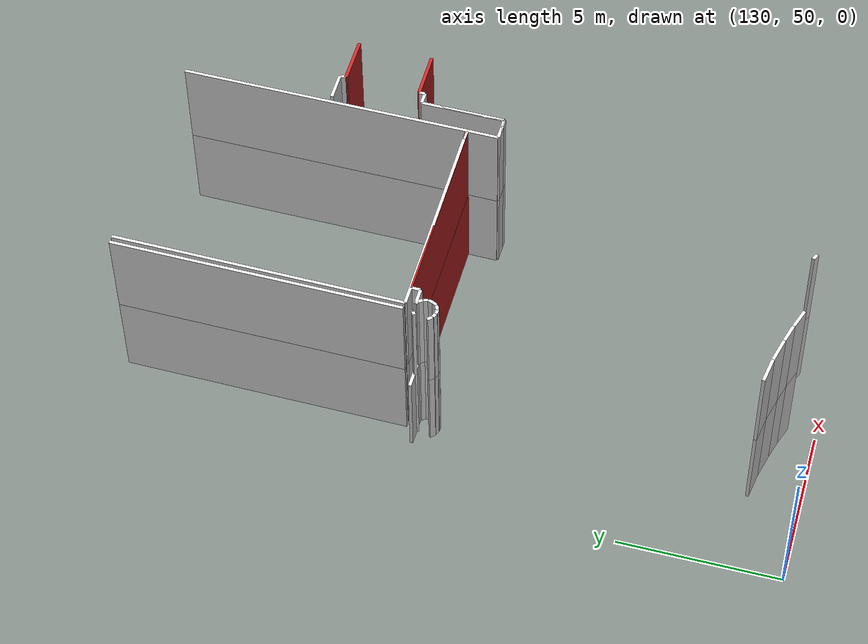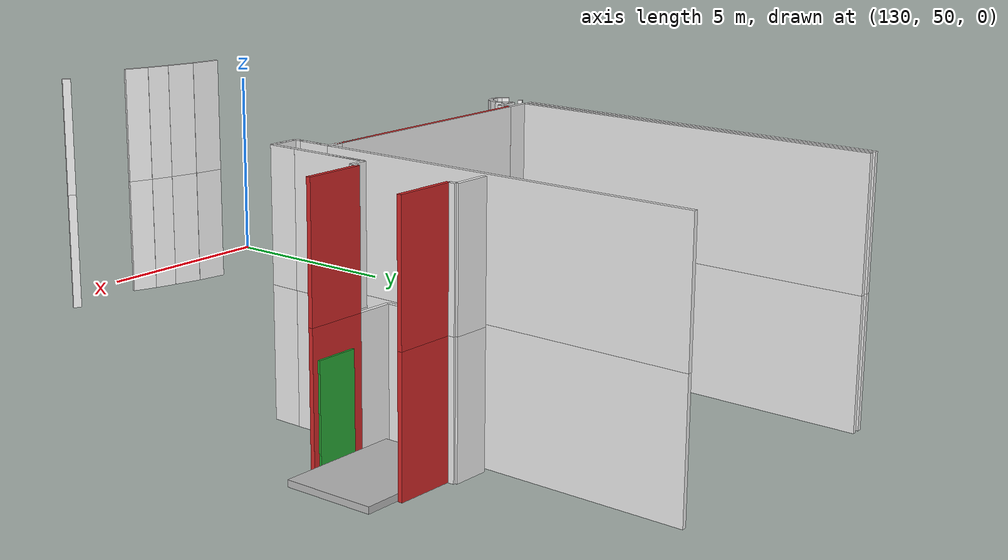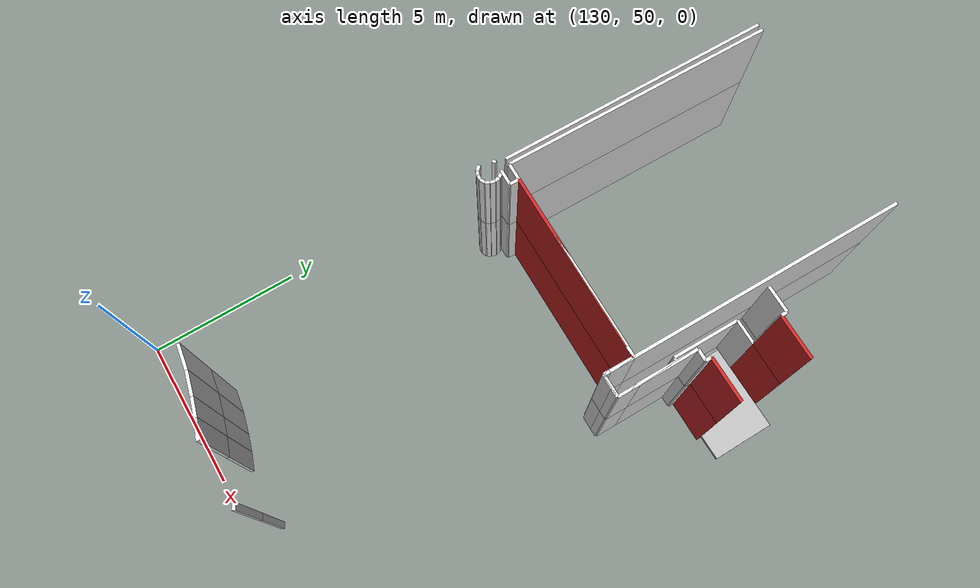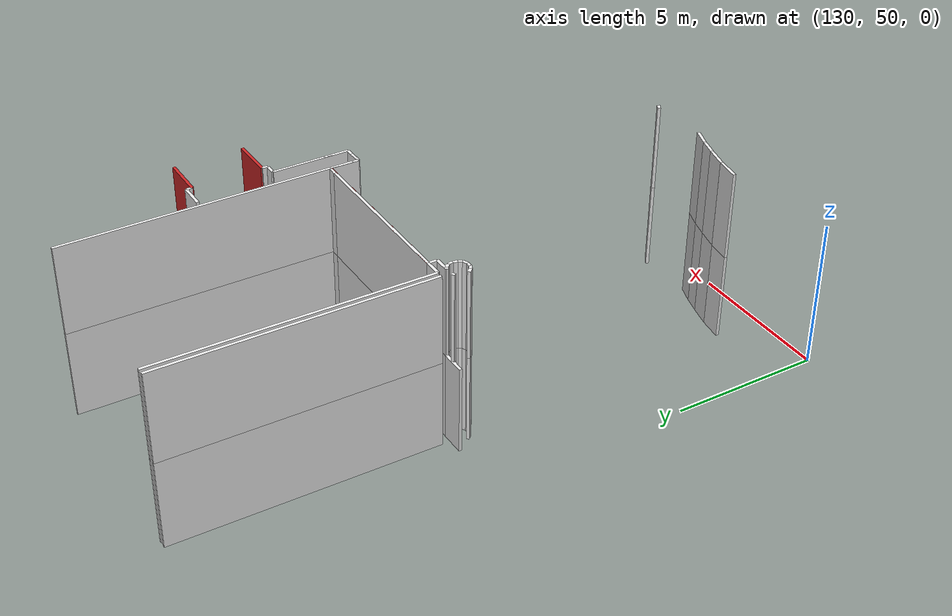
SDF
<sdf version="1.6">
 <world name="default">
  <model name="elevator">
   <pose>141.07 64.850 0.080 0 0 -1.5708</pose>
   <link name="link">
    <inertial><mass>800</mass></inertial>
    <collision name="floor_collision"><geometry><box><size>2.10 2.91 0.15</size></box></geometry></collision>
    <visual name="floor_visual"><geometry><box><size>2.10 2.91 0.15</size></box></geometry></visual>
   </link>
   <link name="door">
    <pose>1.0745 0 1.125 0 0 0</pose>
    <collision name="collision"><geometry><box><size>0.05 1.0 2.25</size></box></geometry></collision>
    <visual name="visual">
     <geometry><box><size>0.05 1.0 2.25</size></box></geometry>
     <material><script><name>Gazebo/Green</name></script></material>
    </visual>
   </link>
   <joint name="door_joint" type="prismatic">
    <parent>link</parent>
    <child>door</child>
    <axis>
     <xyz>0 1 0</xyz>
     <limit><lower>0</lower><upper>1</upper><effort>30</effort></limit>
     <dynamics><damping>2</damping></dynamics>
    </axis>
   </joint>
   <joint name="lift_joint" type="prismatic">
    <parent>world</parent>
    <child>link</child>
    <axis>
     <xyz>0 0 1</xyz>
     <limit><lower>0</lower><upper>10</upper><effort>300000</effort></limit>
     <dynamics><damping>5</damping></dynamics>
    </axis>
    <physics><ode><implicit_spring_damper>1</implicit_spring_damper></ode></physics>
   </joint>
   <plugin filename="libgazebo_ros_elevator.so" name="elevator_plugin">
    <lift_joint>elevator::lift_joint</lift_joint>
    <door_joint>elevator::door_joint</door_joint>
    <floor_height>3.075</floor_height>
    <door_wait_time>10</door_wait_time>
    <topic>/elevator</topic>
   </plugin>
  </model>
  <model name="wall_141.0_66.0_1.5">
   <static>true</static>
   <pose>141.0100000000093 65.9800000002142 1.5 0 0 -0.01428474260046099</pose>
   <link name="link">
    <visual name="visual">
     <geometry><box><size>1.4001428498785178 0.1 3</size></box></geometry>
     <material>
      <script><uri>file://media/materials/scripts/gazebo.material</uri><name>Gazebo/Red</name></script>
     </material>
    </visual>
    <collision name="collision"><geometry><box><size>1.4001428498785178 0.1 3</size></box></geometry></collision>
   </link>
  </model>
  <model name="wall_141.0_63.7_1.5">
   <static>true</static>
   <pose>140.9899999999907 63.68500000005588 1.5 0 0 -0.007142735509647464</pose>
   <link name="link">
    <visual name="visual">
     <geometry><box><size>1.4000357138518724 0.1 3</size></box></geometry>
     <material>
      <script><uri>file://media/materials/scripts/gazebo.material</uri><name>Gazebo/Red</name></script>
     </material>
    </visual>
    <collision name="collision"><geometry><box><size>1.4000357138518724 0.1 3</size></box></geometry></collision>
   </link>
  </model>
  <model name="wall_136.2_62.0_1.5">
   <static>true</static>
   <pose>136.19500000000698 61.950000000186265 1.5 0 0 -0.013266220046968015</pose>
   <link name="link">
    <visual name="visual">
     <geometry><box><size>6.030530656612972 0.1 3</size></box></geometry>
     <material>
      <script><uri>file://media/materials/scripts/gazebo.material</uri><name>Gazebo/Red</name></script>
     </material>
    </visual>
    <collision name="collision"><geometry><box><size>6.030530656612972 0.1 3</size></box></geometry></collision>
   </link>
  </model>
  <model name="wall_141.0_66.0_4.5">
   <static>true</static>
   <pose>141.0100000000093 65.9800000002142 4.5 0 0 -0.01428474260046099</pose>
   <link name="link">
    <visual name="visual">
     <geometry><box><size>1.4001428498785178 0.1 3</size></box></geometry>
     <material>
      <script><uri>file://media/materials/scripts/gazebo.material</uri><name>Gazebo/Red</name></script>
     </material>
    </visual>
    <collision name="collision"><geometry><box><size>1.4001428498785178 0.1 3</size></box></geometry></collision>
   </link>
  </model>
  <model name="wall_136.2_62.0_4.5">
   <static>true</static>
   <pose>136.19500000000698 61.950000000186265 4.5 0 0 -0.013266220046968015</pose>
   <link name="link">
    <visual name="visual">
     <geometry><box><size>6.030530656612972 0.1 3</size></box></geometry>
     <material>
      <script><uri>file://media/materials/scripts/gazebo.material</uri><name>Gazebo/Red</name></script>
     </material>
    </visual>
    <collision name="collision"><geometry><box><size>6.030530656612972 0.1 3</size></box></geometry></collision>
   </link>
  </model>
  <model name="wall_141.0_63.7_4.5">
   <static>true</static>
   <pose>140.9899999999907 63.68500000005588 4.5 0 0 -0.007142735509647464</pose>
   <link name="link">
    <visual name="visual">
     <geometry><box><size>1.4000357138518724 0.1 3</size></box></geometry>
     <material>
      <script><uri>file://media/materials/scripts/gazebo.material</uri><name>Gazebo/Red</name></script>
     </material>
    </visual>
    <collision name="collision"><geometry><box><size>1.4000357138518724 0.1 3</size></box></geometry></collision>
   </link>
  </model>
  <model name="wall_139.9_66.0_1.5">
   <static>true</static>
   <pose>139.88000000000466 65.99500000011176 1.5 0 0 3.129965270893089</pose>
   <link name="link">
    <visual name="visual">
     <geometry><box><size>0.860058137553213 0.1 3</size></box></geometry>
     <material>
      <script><uri>file://media/materials/scripts/gazebo.material</uri><name>Gazebo/White</name></script>
     </material>
    </visual>
    <collision name="collision"><geometry><box><size>0.860058137553213 0.1 3</size></box></geometry></collision>
   </link>
  </model>
  <model name="wall_139.4_64.9_1.5">
   <static>true</static>
   <pose>139.43499999999767 64.85000000009313 1.5 0 0 -1.583839065438706</pose>
   <link name="link">
    <visual name="visual">
     <geometry><box><size>2.3001956436670468 0.1 3</size></box></geometry>
     <material>
      <script><uri>file://media/materials/scripts/gazebo.material</uri><name>Gazebo/White</name></script>
     </material>
    </visual>
    <collision name="collision"><geometry><box><size>2.3001956436670468 0.1 3</size></box></geometry></collision>
   </link>
  </model>
  <model name="wall_139.9_63.7_1.5">
   <static>true</static>
   <pose>139.85499999998137 63.69500000006519 1.5 0 0 -0.011493746993381555</pose>
   <link name="link">
    <visual name="visual">
     <geometry><box><size>0.870057469364375 0.1 3</size></box></geometry>
     <material>
      <script><uri>file://media/materials/scripts/gazebo.material</uri><name>Gazebo/White</name></script>
     </material>
    </visual>
    <collision name="collision"><geometry><box><size>0.870057469364375 0.1 3</size></box></geometry></collision>
   </link>
  </model>
  <model name="wall_139.9_66.2_1.5">
   <static>true</static>
   <pose>139.8850000000093 66.18500000005588 1.5 0 0 -0.011764162887155684</pose>
   <link name="link">
    <visual name="visual">
     <geometry><box><size>0.8500588214682255 0.1 3</size></box></geometry>
     <material>
      <script><uri>file://media/materials/scripts/gazebo.material</uri><name>Gazebo/White</name></script>
     </material>
    </visual>
    <collision name="collision"><geometry><box><size>0.8500588214682255 0.1 3</size></box></geometry></collision>
   </link>
  </model>
  <model name="wall_140.3_66.1_1.5">
   <static>true</static>
   <pose>140.30999999999767 66.08500000019558 1.5 0 0 -1.5707963267948966</pose>
   <link name="link">
    <visual name="visual">
     <geometry><box><size>0.18999999994412065 0.1 3</size></box></geometry>
     <material>
      <script><uri>file://media/materials/scripts/gazebo.material</uri><name>Gazebo/White</name></script>
     </material>
    </visual>
    <collision name="collision"><geometry><box><size>0.18999999994412065 0.1 3</size></box></geometry></collision>
   </link>
  </model>
  <model name="wall_132.5_66.4_1.5">
   <static>true</static>
   <pose>132.4899999999907 66.42999999993481 1.5 0 0 1.557253136818869</pose>
   <link name="link">
    <visual name="visual">
     <geometry><box><size>8.860812603688696 0.1 3</size></box></geometry>
     <material>
      <script><uri>file://media/materials/scripts/gazebo.material</uri><name>Gazebo/White</name></script>
     </material>
    </visual>
    <collision name="collision"><geometry><box><size>8.860812603688696 0.1 3</size></box></geometry></collision>
   </link>
  </model>
  <model name="wall_139.0_61.9_1.5">
   <static>true</static>
   <pose>139.04000000000815 61.91500000003725 1.5 0 0 3.112189366044838</pose>
   <link name="link">
    <visual name="visual">
     <geometry><box><size>0.34014702705292804 0.1 3</size></box></geometry>
     <material>
      <script><uri>file://media/materials/scripts/gazebo.material</uri><name>Gazebo/White</name></script>
     </material>
    </visual>
    <collision name="collision"><geometry><box><size>0.34014702705292804 0.1 3</size></box></geometry></collision>
   </link>
  </model>
  <model name="wall_136.0_62.0_1.5">
   <static>true</static>
   <pose>136.02499999999418 61.955000000074506 1.5 0 0 3.1292909894057774</pose>
   <link name="link">
    <visual name="visual">
     <geometry><box><size>5.690430563680416 0.1 3</size></box></geometry>
     <material>
      <script><uri>file://media/materials/scripts/gazebo.material</uri><name>Gazebo/White</name></script>
     </material>
    </visual>
    <collision name="collision"><geometry><box><size>5.690430563680416 0.1 3</size></box></geometry></collision>
   </link>
  </model>
  <model name="wall_132.9_62.0_1.5">
   <static>true</static>
   <pose>132.89999999999418 61.99500000011176 1.5 0 0 3.1237374088491774</pose>
   <link name="link">
    <visual name="visual">
     <geometry><box><size>0.5600892785912992 0.1 3</size></box></geometry>
     <material>
      <script><uri>file://media/materials/scripts/gazebo.material</uri><name>Gazebo/White</name></script>
     </material>
    </visual>
    <collision name="collision"><geometry><box><size>0.5600892785912992 0.1 3</size></box></geometry></collision>
   </link>
  </model>
  <model name="wall_132.7_66.4_1.5">
   <static>true</static>
   <pose>132.69000000000233 66.42999999993481 1.5 0 0 1.5549962873031096</pose>
   <link name="link">
    <visual name="visual">
     <geometry><box><size>8.861106025643384 0.1 3</size></box></geometry>
     <material>
      <script><uri>file://media/materials/scripts/gazebo.material</uri><name>Gazebo/White</name></script>
     </material>
    </visual>
    <collision name="collision"><geometry><box><size>8.861106025643384 0.1 3</size></box></geometry></collision>
   </link>
  </model>
  <model name="wall_139.3_66.3_1.5">
   <static>true</static>
   <pose>139.26500000001397 66.34000000008382 1.5 0 0 -1.583211038835171</pose>
   <link name="link">
    <visual name="visual">
     <geometry><box><size>8.860682817801711 0.1 3</size></box></geometry>
     <material>
      <script><uri>file://media/materials/scripts/gazebo.material</uri><name>Gazebo/White</name></script>
     </material>
    </visual>
    <collision name="collision"><geometry><box><size>8.860682817801711 0.1 3</size></box></geometry></collision>
   </link>
  </model>
  <model name="wall_137.2_51.0_1.5">
   <static>true</static>
   <pose>137.19999999998254 51.0 1.5 0 0 2.6344941507624737</pose>
   <link name="link">
    <visual name="visual">
     <geometry><box><size>0.205912602632718 0.1 3</size></box></geometry>
     <material>
      <script><uri>file://media/materials/scripts/gazebo.material</uri><name>Gazebo/White</name></script>
     </material>
    </visual>
    <collision name="collision"><geometry><box><size>0.205912602632718 0.1 3</size></box></geometry></collision>
   </link>
  </model>
  <model name="wall_134.9_51.0_1.5">
   <static>true</static>
   <pose>134.91500000000815 51.03500000014901 1.5 0 0 2.799642826681837</pose>
   <link name="link">
    <visual name="visual">
     <geometry><box><size>0.6262587324856838 0.1 3</size></box></geometry>
     <material>
      <script><uri>file://media/materials/scripts/gazebo.material</uri><name>Gazebo/White</name></script>
     </material>
    </visual>
    <collision name="collision"><geometry><box><size>0.6262587324856838 0.1 3</size></box></geometry></collision>
   </link>
  </model>
  <model name="wall_134.3_51.2_1.5">
   <static>true</static>
   <pose>134.3399999999965 51.21999999997206 1.5 0 0 2.863292995106354</pose>
   <link name="link">
    <visual name="visual">
     <geometry><box><size>0.5824087910532124 0.1 3</size></box></geometry>
     <material>
      <script><uri>file://media/materials/scripts/gazebo.material</uri><name>Gazebo/White</name></script>
     </material>
    </visual>
    <collision name="collision"><geometry><box><size>0.5824087910532124 0.1 3</size></box></geometry></collision>
   </link>
  </model>
  <model name="wall_133.7_51.4_1.5">
   <static>true</static>
   <pose>133.70000000001164 51.389999999897555 1.5 0 0 2.896613990234664</pose>
   <link name="link">
    <visual name="visual">
     <geometry><box><size>0.7421590126247316 0.1 3</size></box></geometry>
     <material>
      <script><uri>file://media/materials/scripts/gazebo.material</uri><name>Gazebo/White</name></script>
     </material>
    </visual>
    <collision name="collision"><geometry><box><size>0.7421590126247316 0.1 3</size></box></geometry></collision>
   </link>
  </model>
  <model name="wall_133.0_51.5_1.5">
   <static>true</static>
   <pose>132.95000000001164 51.54000000003725 1.5 0 0 2.9889433250599438</pose>
   <link name="link">
    <visual name="visual">
     <geometry><box><size>0.7891767863225628 0.1 3</size></box></geometry>
     <material>
      <script><uri>file://media/materials/scripts/gazebo.material</uri><name>Gazebo/White</name></script>
     </material>
    </visual>
    <collision name="collision"><geometry><box><size>0.7891767863225628 0.1 3</size></box></geometry></collision>
   </link>
  </model>
  <model name="wall_132.3_61.7_1.5">
   <static>true</static>
   <pose>132.3300000000163 61.670000000158325 1.5 0 0 -2.601173152805612</pose>
   <link name="link">
    <visual name="visual">
     <geometry><box><size>0.11661903790569063 0.1 3</size></box></geometry>
     <material>
      <script><uri>file://media/materials/scripts/gazebo.material</uri><name>Gazebo/White</name></script>
     </material>
    </visual>
    <collision name="collision"><geometry><box><size>0.11661903790569063 0.1 3</size></box></geometry></collision>
   </link>
  </model>
  <model name="wall_132.3_61.2_1.5">
   <static>true</static>
   <pose>132.27000000001863 61.175000000046566 1.5 0 0 -0.8253768518968939</pose>
   <link name="link">
    <visual name="visual">
     <geometry><box><size>0.17691806038643168 0.1 3</size></box></geometry>
     <material>
      <script><uri>file://media/materials/scripts/gazebo.material</uri><name>Gazebo/White</name></script>
     </material>
    </visual>
    <collision name="collision"><geometry><box><size>0.17691806038643168 0.1 3</size></box></geometry></collision>
   </link>
  </model>
  <model name="wall_132.4_61.1_1.5">
   <static>true</static>
   <pose>132.39500000001863 61.079999999841675 1.5 0 0 -0.4324077759112656</pose>
   <link name="link">
    <visual name="visual">
     <geometry><box><size>0.14317821066040826 0.1 3</size></box></geometry>
     <material>
      <script><uri>file://media/materials/scripts/gazebo.material</uri><name>Gazebo/White</name></script>
     </material>
    </visual>
    <collision name="collision"><geometry><box><size>0.14317821066040826 0.1 3</size></box></geometry></collision>
   </link>
  </model>
  <model name="wall_132.5_61.0_1.5">
   <static>true</static>
   <pose>132.52999999999884 61.044999999925494 1.5 0 0 -0.07130746321929742</pose>
   <link name="link">
    <visual name="visual">
     <geometry><box><size>0.14035668841613164 0.1 3</size></box></geometry>
     <material>
      <script><uri>file://media/materials/scripts/gazebo.material</uri><name>Gazebo/White</name></script>
     </material>
    </visual>
    <collision name="collision"><geometry><box><size>0.14035668841613164 0.1 3</size></box></geometry></collision>
   </link>
  </model>
  <model name="wall_132.7_61.1_1.5">
   <static>true</static>
   <pose>132.67999999999302 61.074999999953434 1.5 0 0 0.41241044064316335</pose>
   <link name="link">
    <visual name="visual">
     <geometry><box><size>0.17464249192840064 0.1 3</size></box></geometry>
     <material>
      <script><uri>file://media/materials/scripts/gazebo.material</uri><name>Gazebo/White</name></script>
     </material>
    </visual>
    <collision name="collision"><geometry><box><size>0.17464249192840064 0.1 3</size></box></geometry></collision>
   </link>
  </model>
  <model name="wall_132.8_61.2_1.5">
   <static>true</static>
   <pose>132.7950000000128 61.169999999925494 1.5 0 0 1.04272187873045</pose>
   <link name="link">
    <visual name="visual">
     <geometry><box><size>0.13892443999455237 0.1 3</size></box></geometry>
     <material>
      <script><uri>file://media/materials/scripts/gazebo.material</uri><name>Gazebo/White</name></script>
     </material>
    </visual>
    <collision name="collision"><geometry><box><size>0.13892443999455237 0.1 3</size></box></geometry></collision>
   </link>
  </model>
  <model name="wall_132.9_61.3_1.5">
   <static>true</static>
   <pose>132.85000000000582 61.30499999993481 1.5 0 0 1.310193935023403</pose>
   <link name="link">
    <visual name="visual">
     <geometry><box><size>0.15524174686721334 0.1 3</size></box></geometry>
     <material>
      <script><uri>file://media/materials/scripts/gazebo.material</uri><name>Gazebo/White</name></script>
     </material>
    </visual>
    <collision name="collision"><geometry><box><size>0.15524174686721334 0.1 3</size></box></geometry></collision>
   </link>
  </model>
  <model name="wall_132.9_61.5_1.5">
   <static>true</static>
   <pose>132.85500000001048 61.454999999841675 1.5 0 0 1.7681918865701522</pose>
   <link name="link">
    <visual name="visual">
     <geometry><box><size>0.15297058531052382 0.1 3</size></box></geometry>
     <material>
      <script><uri>file://media/materials/scripts/gazebo.material</uri><name>Gazebo/White</name></script>
     </material>
    </visual>
    <collision name="collision"><geometry><box><size>0.15297058531052382 0.1 3</size></box></geometry></collision>
   </link>
  </model>
  <model name="wall_132.8_61.6_1.5">
   <static>true</static>
   <pose>132.79000000000815 61.59499999997206 1.5 0 0 2.2264919518895905</pose>
   <link name="link">
    <visual name="visual">
     <geometry><box><size>0.16401219497037284 0.1 3</size></box></geometry>
     <material>
      <script><uri>file://media/materials/scripts/gazebo.material</uri><name>Gazebo/White</name></script>
     </material>
    </visual>
    <collision name="collision"><geometry><box><size>0.16401219497037284 0.1 3</size></box></geometry></collision>
   </link>
  </model>
  <model name="wall_132.7_61.7_1.5">
   <static>true</static>
   <pose>132.69999999998254 61.68000000016764 1.5 0 0 2.6779450442979487</pose>
   <link name="link">
    <visual name="visual">
     <geometry><box><size>0.0894427191312291 0.1 3</size></box></geometry>
     <material>
      <script><uri>file://media/materials/scripts/gazebo.material</uri><name>Gazebo/White</name></script>
     </material>
    </visual>
    <collision name="collision"><geometry><box><size>0.0894427191312291 0.1 3</size></box></geometry></collision>
   </link>
  </model>
  <model name="wall_132.9_61.7_1.5">
   <static>true</static>
   <pose>132.91499999997905 61.69500000006519 1.5 0 0 -0.019605331331456193</pose>
   <link name="link">
    <visual name="visual">
     <geometry><box><size>0.5100980298083324 0.1 3</size></box></geometry>
     <material>
      <script><uri>file://media/materials/scripts/gazebo.material</uri><name>Gazebo/White</name></script>
     </material>
    </visual>
    <collision name="collision"><geometry><box><size>0.5100980298083324 0.1 3</size></box></geometry></collision>
   </link>
  </model>
  <model name="wall_133.2_61.8_1.5">
   <static>true</static>
   <pose>133.17499999998836 61.84000000008382 1.5 0 0 1.5374753309166493</pose>
   <link name="link">
    <visual name="visual">
     <geometry><box><size>0.30016662067562466 0.1 3</size></box></geometry>
     <material>
      <script><uri>file://media/materials/scripts/gazebo.material</uri><name>Gazebo/White</name></script>
     </material>
    </visual>
    <collision name="collision"><geometry><box><size>0.30016662067562466 0.1 3</size></box></geometry></collision>
   </link>
  </model>
  <model name="wall_139.2_61.5_1.5">
   <static>true</static>
   <pose>139.2050000000163 61.5250000001397 1.5 0 0 -1.5837826097268481</pose>
   <link name="link">
    <visual name="visual">
     <geometry><box><size>0.770064932345884 0.1 3</size></box></geometry>
     <material>
      <script><uri>file://media/materials/scripts/gazebo.material</uri><name>Gazebo/White</name></script>
     </material>
    </visual>
    <collision name="collision"><geometry><box><size>0.770064932345884 0.1 3</size></box></geometry></collision>
   </link>
  </model>
  <model name="wall_139.2_61.0_1.5">
   <static>true</static>
   <pose>139.19500000000698 61.045000000158325 1.5 0 0 -1.6233793884701562</pose>
   <link name="link">
    <visual name="visual">
     <geometry><box><size>0.19026297584909185 0.1 3</size></box></geometry>
     <material>
      <script><uri>file://media/materials/scripts/gazebo.material</uri><name>Gazebo/White</name></script>
     </material>
    </visual>
    <collision name="collision"><geometry><box><size>0.19026297584909185 0.1 3</size></box></geometry></collision>
   </link>
  </model>
  <model name="wall_139.4_60.9_1.5">
   <static>true</static>
   <pose>139.4100000000035 60.94500000006519 1.5 0 0 -0.022723361391563727</pose>
   <link name="link">
    <visual name="visual">
     <geometry><box><size>0.44011362170113727 0.1 3</size></box></geometry>
     <material>
      <script><uri>file://media/materials/scripts/gazebo.material</uri><name>Gazebo/White</name></script>
     </material>
    </visual>
    <collision name="collision"><geometry><box><size>0.44011362170113727 0.1 3</size></box></geometry></collision>
   </link>
  </model>
  <model name="wall_139.8_60.9_1.5">
   <static>true</static>
   <pose>139.75500000000466 60.93999999994412 1.5 0 0 0.0</pose>
   <link name="link">
    <visual name="visual">
     <geometry><box><size>0.25 0.1 3</size></box></geometry>
     <material>
      <script><uri>file://media/materials/scripts/gazebo.material</uri><name>Gazebo/White</name></script>
     </material>
    </visual>
    <collision name="collision"><geometry><box><size>0.25 0.1 3</size></box></geometry></collision>
   </link>
  </model>
  <model name="wall_139.9_61.3_1.5">
   <static>true</static>
   <pose>139.8850000000093 61.28499999991618 1.5 0 0 1.5563045877147286</pose>
   <link name="link">
    <visual name="visual">
     <geometry><box><size>0.6900724599077062 0.1 3</size></box></geometry>
     <material>
      <script><uri>file://media/materials/scripts/gazebo.material</uri><name>Gazebo/White</name></script>
     </material>
    </visual>
    <collision name="collision"><geometry><box><size>0.6900724599077062 0.1 3</size></box></geometry></collision>
   </link>
  </model>
  <model name="wall_139.9_62.6_1.5">
   <static>true</static>
   <pose>139.89999999999418 62.56999999983236 1.5 0 0 1.5601584302397742</pose>
   <link name="link">
    <visual name="visual">
     <geometry><box><size>1.88010637985679 0.1 3</size></box></geometry>
     <material>
      <script><uri>file://media/materials/scripts/gazebo.material</uri><name>Gazebo/White</name></script>
     </material>
    </visual>
    <collision name="collision"><geometry><box><size>1.88010637985679 0.1 3</size></box></geometry></collision>
   </link>
  </model>
  <model name="wall_140.1_63.5_1.5">
   <static>true</static>
   <pose>140.09500000000116 63.50499999988824 1.5 0 0 -0.027020448579695773</pose>
   <link name="link">
    <visual name="visual">
     <geometry><box><size>0.3701351105139276 0.1 3</size></box></geometry>
     <material>
      <script><uri>file://media/materials/scripts/gazebo.material</uri><name>Gazebo/White</name></script>
     </material>
    </visual>
    <collision name="collision"><geometry><box><size>0.3701351105139276 0.1 3</size></box></geometry></collision>
   </link>
  </model>
  <model name="wall_140.3_63.6_1.5">
   <static>true</static>
   <pose>140.2850000000035 63.59499999997206 1.5 0 0 1.5182132654251468</pose>
   <link name="link">
    <visual name="visual">
     <geometry><box><size>0.19026297584603252 0.1 3</size></box></geometry>
     <material>
      <script><uri>file://media/materials/scripts/gazebo.material</uri><name>Gazebo/White</name></script>
     </material>
    </visual>
    <collision name="collision"><geometry><box><size>0.19026297584603252 0.1 3</size></box></geometry></collision>
   </link>
  </model>
  <model name="wall_132.5_61.7_1.5">
   <static>true</static>
   <pose>132.51499999998487 61.699999999953434 1.5 0 0 -0.015265989561022346</pose>
   <link name="link">
    <visual name="visual">
     <geometry><box><size>1.3101526628582811 0.1 3</size></box></geometry>
     <material>
      <script><uri>file://media/materials/scripts/gazebo.material</uri><name>Gazebo/White</name></script>
     </material>
    </visual>
    <collision name="collision"><geometry><box><size>1.3101526628582811 0.1 3</size></box></geometry></collision>
   </link>
  </model>
  <model name="wall_139.2_61.4_1.5">
   <static>true</static>
   <pose>139.20000000001164 61.43000000016764 1.5 0 0 -1.5916266468513158</pose>
   <link name="link">
    <visual name="visual">
     <geometry><box><size>0.9602083106957674 0.1 3</size></box></geometry>
     <material>
      <script><uri>file://media/materials/scripts/gazebo.material</uri><name>Gazebo/White</name></script>
     </material>
    </visual>
    <collision name="collision"><geometry><box><size>0.9602083106957674 0.1 3</size></box></geometry></collision>
   </link>
  </model>
  <model name="wall_139.5_60.9_1.5">
   <static>true</static>
   <pose>139.5350000000035 60.94500000006519 1.5 0 0 -0.014491739416310578</pose>
   <link name="link">
    <visual name="visual">
     <geometry><box><size>0.6900724599692818 0.1 3</size></box></geometry>
     <material>
      <script><uri>file://media/materials/scripts/gazebo.material</uri><name>Gazebo/White</name></script>
     </material>
    </visual>
    <collision name="collision"><geometry><box><size>0.6900724599692818 0.1 3</size></box></geometry></collision>
   </link>
  </model>
  <model name="wall_139.9_62.2_1.5">
   <static>true</static>
   <pose>139.89499999998952 62.2249999998603 1.5 0 0 1.559123705215765</pose>
   <link name="link">
    <visual name="visual">
     <geometry><box><size>2.570175091143894 0.1 3</size></box></geometry>
     <material>
      <script><uri>file://media/materials/scripts/gazebo.material</uri><name>Gazebo/White</name></script>
     </material>
    </visual>
    <collision name="collision"><geometry><box><size>2.570175091143894 0.1 3</size></box></geometry></collision>
   </link>
  </model>
  <model name="wall_139.9_66.2_4.5">
   <static>true</static>
   <pose>139.8850000000093 66.18500000005588 4.5 0 0 -0.011764162887155684</pose>
   <link name="link">
    <visual name="visual">
     <geometry><box><size>0.8500588214682255 0.1 3</size></box></geometry>
     <material>
      <script><uri>file://media/materials/scripts/gazebo.material</uri><name>Gazebo/White</name></script>
     </material>
    </visual>
    <collision name="collision"><geometry><box><size>0.8500588214682255 0.1 3</size></box></geometry></collision>
   </link>
  </model>
  <model name="wall_140.3_66.1_4.5">
   <static>true</static>
   <pose>140.30999999999767 66.08500000019558 4.5 0 0 -1.5707963267948966</pose>
   <link name="link">
    <visual name="visual">
     <geometry><box><size>0.18999999994412065 0.1 3</size></box></geometry>
     <material>
      <script><uri>file://media/materials/scripts/gazebo.material</uri><name>Gazebo/White</name></script>
     </material>
    </visual>
    <collision name="collision"><geometry><box><size>0.18999999994412065 0.1 3</size></box></geometry></collision>
   </link>
  </model>
  <model name="wall_132.5_66.4_4.5">
   <static>true</static>
   <pose>132.4899999999907 66.42999999993481 4.5 0 0 1.557253136818869</pose>
   <link name="link">
    <visual name="visual">
     <geometry><box><size>8.860812603688696 0.1 3</size></box></geometry>
     <material>
      <script><uri>file://media/materials/scripts/gazebo.material</uri><name>Gazebo/White</name></script>
     </material>
    </visual>
    <collision name="collision"><geometry><box><size>8.860812603688696 0.1 3</size></box></geometry></collision>
   </link>
  </model>
  <model name="wall_139.0_61.9_4.5">
   <static>true</static>
   <pose>139.04000000000815 61.91500000003725 4.5 0 0 3.112189366044838</pose>
   <link name="link">
    <visual name="visual">
     <geometry><box><size>0.34014702705292804 0.1 3</size></box></geometry>
     <material>
      <script><uri>file://media/materials/scripts/gazebo.material</uri><name>Gazebo/White</name></script>
     </material>
    </visual>
    <collision name="collision"><geometry><box><size>0.34014702705292804 0.1 3</size></box></geometry></collision>
   </link>
  </model>
  <model name="wall_136.0_62.0_4.5">
   <static>true</static>
   <pose>136.02499999999418 61.955000000074506 4.5 0 0 3.1292909894057774</pose>
   <link name="link">
    <visual name="visual">
     <geometry><box><size>5.690430563680416 0.1 3</size></box></geometry>
     <material>
      <script><uri>file://media/materials/scripts/gazebo.material</uri><name>Gazebo/White</name></script>
     </material>
    </visual>
    <collision name="collision"><geometry><box><size>5.690430563680416 0.1 3</size></box></geometry></collision>
   </link>
  </model>
  <model name="wall_132.9_62.0_4.5">
   <static>true</static>
   <pose>132.89999999999418 61.99500000011176 4.5 0 0 3.1237374088491774</pose>
   <link name="link">
    <visual name="visual">
     <geometry><box><size>0.5600892785912992 0.1 3</size></box></geometry>
     <material>
      <script><uri>file://media/materials/scripts/gazebo.material</uri><name>Gazebo/White</name></script>
     </material>
    </visual>
    <collision name="collision"><geometry><box><size>0.5600892785912992 0.1 3</size></box></geometry></collision>
   </link>
  </model>
  <model name="wall_132.7_66.4_4.5">
   <static>true</static>
   <pose>132.69000000000233 66.42999999993481 4.5 0 0 1.5549962873031096</pose>
   <link name="link">
    <visual name="visual">
     <geometry><box><size>8.861106025643384 0.1 3</size></box></geometry>
     <material>
      <script><uri>file://media/materials/scripts/gazebo.material</uri><name>Gazebo/White</name></script>
     </material>
    </visual>
    <collision name="collision"><geometry><box><size>8.861106025643384 0.1 3</size></box></geometry></collision>
   </link>
  </model>
  <model name="wall_139.3_66.3_4.5">
   <static>true</static>
   <pose>139.26500000001397 66.34000000008382 4.5 0 0 -1.583211038835171</pose>
   <link name="link">
    <visual name="visual">
     <geometry><box><size>8.860682817801711 0.1 3</size></box></geometry>
     <material>
      <script><uri>file://media/materials/scripts/gazebo.material</uri><name>Gazebo/White</name></script>
     </material>
    </visual>
    <collision name="collision"><geometry><box><size>8.860682817801711 0.1 3</size></box></geometry></collision>
   </link>
  </model>
  <model name="wall_137.2_51.0_4.5">
   <static>true</static>
   <pose>137.19999999998254 51.0 4.5 0 0 2.6344941507624737</pose>
   <link name="link">
    <visual name="visual">
     <geometry><box><size>0.205912602632718 0.1 3</size></box></geometry>
     <material>
      <script><uri>file://media/materials/scripts/gazebo.material</uri><name>Gazebo/White</name></script>
     </material>
    </visual>
    <collision name="collision"><geometry><box><size>0.205912602632718 0.1 3</size></box></geometry></collision>
   </link>
  </model>
  <model name="wall_134.9_51.0_4.5">
   <static>true</static>
   <pose>134.91500000000815 51.03500000014901 4.5 0 0 2.799642826681837</pose>
   <link name="link">
    <visual name="visual">
     <geometry><box><size>0.6262587324856838 0.1 3</size></box></geometry>
     <material>
      <script><uri>file://media/materials/scripts/gazebo.material</uri><name>Gazebo/White</name></script>
     </material>
    </visual>
    <collision name="collision"><geometry><box><size>0.6262587324856838 0.1 3</size></box></geometry></collision>
   </link>
  </model>
  <model name="wall_134.3_51.2_4.5">
   <static>true</static>
   <pose>134.3399999999965 51.21999999997206 4.5 0 0 2.863292995106354</pose>
   <link name="link">
    <visual name="visual">
     <geometry><box><size>0.5824087910532124 0.1 3</size></box></geometry>
     <material>
      <script><uri>file://media/materials/scripts/gazebo.material</uri><name>Gazebo/White</name></script>
     </material>
    </visual>
    <collision name="collision"><geometry><box><size>0.5824087910532124 0.1 3</size></box></geometry></collision>
   </link>
  </model>
  <model name="wall_133.7_51.4_4.5">
   <static>true</static>
   <pose>133.70000000001164 51.389999999897555 4.5 0 0 2.896613990234664</pose>
   <link name="link">
    <visual name="visual">
     <geometry><box><size>0.7421590126247316 0.1 3</size></box></geometry>
     <material>
      <script><uri>file://media/materials/scripts/gazebo.material</uri><name>Gazebo/White</name></script>
     </material>
    </visual>
    <collision name="collision"><geometry><box><size>0.7421590126247316 0.1 3</size></box></geometry></collision>
   </link>
  </model>
  <model name="wall_133.0_51.5_4.5">
   <static>true</static>
   <pose>132.95000000001164 51.54000000003725 4.5 0 0 2.9889433250599438</pose>
   <link name="link">
    <visual name="visual">
     <geometry><box><size>0.7891767863225628 0.1 3</size></box></geometry>
     <material>
      <script><uri>file://media/materials/scripts/gazebo.material</uri><name>Gazebo/White</name></script>
     </material>
    </visual>
    <collision name="collision"><geometry><box><size>0.7891767863225628 0.1 3</size></box></geometry></collision>
   </link>
  </model>
  <model name="wall_132.3_61.7_4.5">
   <static>true</static>
   <pose>132.3300000000163 61.670000000158325 4.5 0 0 -2.601173152805612</pose>
   <link name="link">
    <visual name="visual">
     <geometry><box><size>0.11661903790569063 0.1 3</size></box></geometry>
     <material>
      <script><uri>file://media/materials/scripts/gazebo.material</uri><name>Gazebo/White</name></script>
     </material>
    </visual>
    <collision name="collision"><geometry><box><size>0.11661903790569063 0.1 3</size></box></geometry></collision>
   </link>
  </model>
  <model name="wall_132.3_61.2_4.5">
   <static>true</static>
   <pose>132.27000000001863 61.175000000046566 4.5 0 0 -0.8253768518968939</pose>
   <link name="link">
    <visual name="visual">
     <geometry><box><size>0.17691806038643168 0.1 3</size></box></geometry>
     <material>
      <script><uri>file://media/materials/scripts/gazebo.material</uri><name>Gazebo/White</name></script>
     </material>
    </visual>
    <collision name="collision"><geometry><box><size>0.17691806038643168 0.1 3</size></box></geometry></collision>
   </link>
  </model>
  <model name="wall_132.4_61.1_4.5">
   <static>true</static>
   <pose>132.39500000001863 61.079999999841675 4.5 0 0 -0.4324077759112656</pose>
   <link name="link">
    <visual name="visual">
     <geometry><box><size>0.14317821066040826 0.1 3</size></box></geometry>
     <material>
      <script><uri>file://media/materials/scripts/gazebo.material</uri><name>Gazebo/White</name></script>
     </material>
    </visual>
    <collision name="collision"><geometry><box><size>0.14317821066040826 0.1 3</size></box></geometry></collision>
   </link>
  </model>
  <model name="wall_132.5_61.0_4.5">
   <static>true</static>
   <pose>132.52999999999884 61.044999999925494 4.5 0 0 -0.07130746321929742</pose>
   <link name="link">
    <visual name="visual">
     <geometry><box><size>0.14035668841613164 0.1 3</size></box></geometry>
     <material>
      <script><uri>file://media/materials/scripts/gazebo.material</uri><name>Gazebo/White</name></script>
     </material>
    </visual>
    <collision name="collision"><geometry><box><size>0.14035668841613164 0.1 3</size></box></geometry></collision>
   </link>
  </model>
  <model name="wall_132.7_61.1_4.5">
   <static>true</static>
   <pose>132.67999999999302 61.074999999953434 4.5 0 0 0.41241044064316335</pose>
   <link name="link">
    <visual name="visual">
     <geometry><box><size>0.17464249192840064 0.1 3</size></box></geometry>
     <material>
      <script><uri>file://media/materials/scripts/gazebo.material</uri><name>Gazebo/White</name></script>
     </material>
    </visual>
    <collision name="collision"><geometry><box><size>0.17464249192840064 0.1 3</size></box></geometry></collision>
   </link>
  </model>
  <model name="wall_132.8_61.2_4.5">
   <static>true</static>
   <pose>132.7950000000128 61.169999999925494 4.5 0 0 1.04272187873045</pose>
   <link name="link">
    <visual name="visual">
     <geometry><box><size>0.13892443999455237 0.1 3</size></box></geometry>
     <material>
      <script><uri>file://media/materials/scripts/gazebo.material</uri><name>Gazebo/White</name></script>
     </material>
    </visual>
    <collision name="collision"><geometry><box><size>0.13892443999455237 0.1 3</size></box></geometry></collision>
   </link>
  </model>
  <model name="wall_132.9_61.3_4.5">
   <static>true</static>
   <pose>132.85000000000582 61.30499999993481 4.5 0 0 1.310193935023403</pose>
   <link name="link">
    <visual name="visual">
     <geometry><box><size>0.15524174686721334 0.1 3</size></box></geometry>
     <material>
      <script><uri>file://media/materials/scripts/gazebo.material</uri><name>Gazebo/White</name></script>
     </material>
    </visual>
    <collision name="collision"><geometry><box><size>0.15524174686721334 0.1 3</size></box></geometry></collision>
   </link>
  </model>
  <model name="wall_132.9_61.5_4.5">
   <static>true</static>
   <pose>132.85500000001048 61.454999999841675 4.5 0 0 1.7681918865701522</pose>
   <link name="link">
    <visual name="visual">
     <geometry><box><size>0.15297058531052382 0.1 3</size></box></geometry>
     <material>
      <script><uri>file://media/materials/scripts/gazebo.material</uri><name>Gazebo/White</name></script>
     </material>
    </visual>
    <collision name="collision"><geometry><box><size>0.15297058531052382 0.1 3</size></box></geometry></collision>
   </link>
  </model>
  <model name="wall_132.8_61.6_4.5">
   <static>true</static>
   <pose>132.79000000000815 61.59499999997206 4.5 0 0 2.2264919518895905</pose>
   <link name="link">
    <visual name="visual">
     <geometry><box><size>0.16401219497037284 0.1 3</size></box></geometry>
     <material>
      <script><uri>file://media/materials/scripts/gazebo.material</uri><name>Gazebo/White</name></script>
     </material>
    </visual>
    <collision name="collision"><geometry><box><size>0.16401219497037284 0.1 3</size></box></geometry></collision>
   </link>
  </model>
  <model name="wall_132.7_61.7_4.5">
   <static>true</static>
   <pose>132.69999999998254 61.68000000016764 4.5 0 0 2.6779450442979487</pose>
   <link name="link">
    <visual name="visual">
     <geometry><box><size>0.0894427191312291 0.1 3</size></box></geometry>
     <material>
      <script><uri>file://media/materials/scripts/gazebo.material</uri><name>Gazebo/White</name></script>
     </material>
    </visual>
    <collision name="collision"><geometry><box><size>0.0894427191312291 0.1 3</size></box></geometry></collision>
   </link>
  </model>
  <model name="wall_132.9_61.7_4.5">
   <static>true</static>
   <pose>132.91499999997905 61.69500000006519 4.5 0 0 -0.019605331331456193</pose>
   <link name="link">
    <visual name="visual">
     <geometry><box><size>0.5100980298083324 0.1 3</size></box></geometry>
     <material>
      <script><uri>file://media/materials/scripts/gazebo.material</uri><name>Gazebo/White</name></script>
     </material>
    </visual>
    <collision name="collision"><geometry><box><size>0.5100980298083324 0.1 3</size></box></geometry></collision>
   </link>
  </model>
  <model name="wall_133.2_61.8_4.5">
   <static>true</static>
   <pose>133.17499999998836 61.84000000008382 4.5 0 0 1.5374753309166493</pose>
   <link name="link">
    <visual name="visual">
     <geometry><box><size>0.30016662067562466 0.1 3</size></box></geometry>
     <material>
      <script><uri>file://media/materials/scripts/gazebo.material</uri><name>Gazebo/White</name></script>
     </material>
    </visual>
    <collision name="collision"><geometry><box><size>0.30016662067562466 0.1 3</size></box></geometry></collision>
   </link>
  </model>
  <model name="wall_139.2_61.5_4.5">
   <static>true</static>
   <pose>139.2050000000163 61.5250000001397 4.5 0 0 -1.5837826097268481</pose>
   <link name="link">
    <visual name="visual">
     <geometry><box><size>0.770064932345884 0.1 3</size></box></geometry>
     <material>
      <script><uri>file://media/materials/scripts/gazebo.material</uri><name>Gazebo/White</name></script>
     </material>
    </visual>
    <collision name="collision"><geometry><box><size>0.770064932345884 0.1 3</size></box></geometry></collision>
   </link>
  </model>
  <model name="wall_139.2_61.0_4.5">
   <static>true</static>
   <pose>139.19500000000698 61.045000000158325 4.5 0 0 -1.6233793884701562</pose>
   <link name="link">
    <visual name="visual">
     <geometry><box><size>0.19026297584909185 0.1 3</size></box></geometry>
     <material>
      <script><uri>file://media/materials/scripts/gazebo.material</uri><name>Gazebo/White</name></script>
     </material>
    </visual>
    <collision name="collision"><geometry><box><size>0.19026297584909185 0.1 3</size></box></geometry></collision>
   </link>
  </model>
  <model name="wall_139.4_60.9_4.5">
   <static>true</static>
   <pose>139.4100000000035 60.94500000006519 4.5 0 0 -0.022723361391563727</pose>
   <link name="link">
    <visual name="visual">
     <geometry><box><size>0.44011362170113727 0.1 3</size></box></geometry>
     <material>
      <script><uri>file://media/materials/scripts/gazebo.material</uri><name>Gazebo/White</name></script>
     </material>
    </visual>
    <collision name="collision"><geometry><box><size>0.44011362170113727 0.1 3</size></box></geometry></collision>
   </link>
  </model>
  <model name="wall_139.8_60.9_4.5">
   <static>true</static>
   <pose>139.75500000000466 60.93999999994412 4.5 0 0 0.0</pose>
   <link name="link">
    <visual name="visual">
     <geometry><box><size>0.25 0.1 3</size></box></geometry>
     <material>
      <script><uri>file://media/materials/scripts/gazebo.material</uri><name>Gazebo/White</name></script>
     </material>
    </visual>
    <collision name="collision"><geometry><box><size>0.25 0.1 3</size></box></geometry></collision>
   </link>
  </model>
  <model name="wall_139.9_61.3_4.5">
   <static>true</static>
   <pose>139.8850000000093 61.28499999991618 4.5 0 0 1.5563045877147286</pose>
   <link name="link">
    <visual name="visual">
     <geometry><box><size>0.6900724599077062 0.1 3</size></box></geometry>
     <material>
      <script><uri>file://media/materials/scripts/gazebo.material</uri><name>Gazebo/White</name></script>
     </material>
    </visual>
    <collision name="collision"><geometry><box><size>0.6900724599077062 0.1 3</size></box></geometry></collision>
   </link>
  </model>
  <model name="wall_139.9_62.6_4.5">
   <static>true</static>
   <pose>139.89999999999418 62.56999999983236 4.5 0 0 1.5601584302397742</pose>
   <link name="link">
    <visual name="visual">
     <geometry><box><size>1.88010637985679 0.1 3</size></box></geometry>
     <material>
      <script><uri>file://media/materials/scripts/gazebo.material</uri><name>Gazebo/White</name></script>
     </material>
    </visual>
    <collision name="collision"><geometry><box><size>1.88010637985679 0.1 3</size></box></geometry></collision>
   </link>
  </model>
  <model name="wall_140.1_63.5_4.5">
   <static>true</static>
   <pose>140.09500000000116 63.50499999988824 4.5 0 0 -0.027020448579695773</pose>
   <link name="link">
    <visual name="visual">
     <geometry><box><size>0.3701351105139276 0.1 3</size></box></geometry>
     <material>
      <script><uri>file://media/materials/scripts/gazebo.material</uri><name>Gazebo/White</name></script>
     </material>
    </visual>
    <collision name="collision"><geometry><box><size>0.3701351105139276 0.1 3</size></box></geometry></collision>
   </link>
  </model>
  <model name="wall_140.3_63.6_4.5">
   <static>true</static>
   <pose>140.2850000000035 63.59499999997206 4.5 0 0 1.5182132654251468</pose>
   <link name="link">
    <visual name="visual">
     <geometry><box><size>0.19026297584603252 0.1 3</size></box></geometry>
     <material>
      <script><uri>file://media/materials/scripts/gazebo.material</uri><name>Gazebo/White</name></script>
     </material>
    </visual>
    <collision name="collision"><geometry><box><size>0.19026297584603252 0.1 3</size></box></geometry></collision>
   </link>
  </model>
  <model name="wall_139.9_62.2_4.5">
   <static>true</static>
   <pose>139.89499999998952 62.2249999998603 4.5 0 0 -1.5824689483740284</pose>
   <link name="link">
    <visual name="visual">
     <geometry><box><size>2.570175091143894 0.1 3</size></box></geometry>
     <material>
      <script><uri>file://media/materials/scripts/gazebo.material</uri><name>Gazebo/White</name></script>
     </material>
    </visual>
    <collision name="collision"><geometry><box><size>2.570175091143894 0.1 3</size></box></geometry></collision>
   </link>
  </model>
  <model name="wall_139.5_60.9_4.5">
   <static>true</static>
   <pose>139.5350000000035 60.94500000006519 4.5 0 0 3.1271009141734827</pose>
   <link name="link">
    <visual name="visual">
     <geometry><box><size>0.6900724599692818 0.1 3</size></box></geometry>
     <material>
      <script><uri>file://media/materials/scripts/gazebo.material</uri><name>Gazebo/White</name></script>
     </material>
    </visual>
    <collision name="collision"><geometry><box><size>0.6900724599692818 0.1 3</size></box></geometry></collision>
   </link>
  </model>
  <model name="wall_139.2_61.4_4.5">
   <static>true</static>
   <pose>139.20000000001164 61.43000000016764 4.5 0 0 1.5499660067384773</pose>
   <link name="link">
    <visual name="visual">
     <geometry><box><size>0.9602083106957674 0.1 3</size></box></geometry>
     <material>
      <script><uri>file://media/materials/scripts/gazebo.material</uri><name>Gazebo/White</name></script>
     </material>
    </visual>
    <collision name="collision"><geometry><box><size>0.9602083106957674 0.1 3</size></box></geometry></collision>
   </link>
  </model>
 </world>
</sdf>
